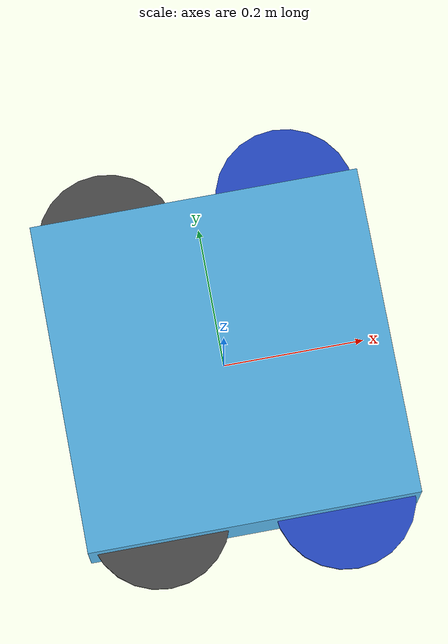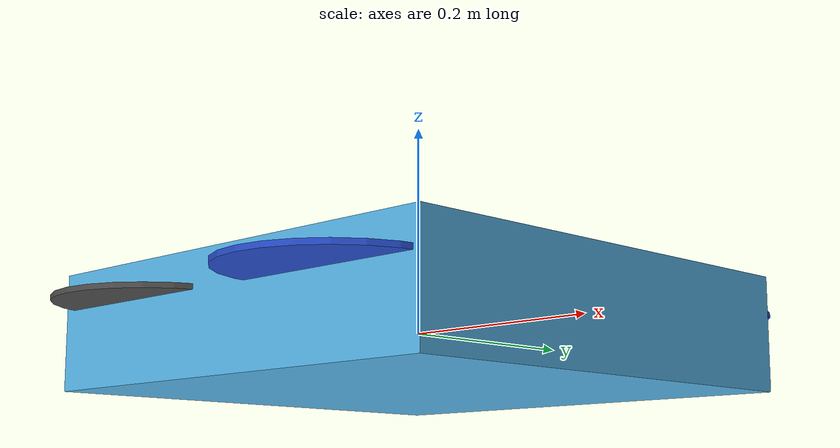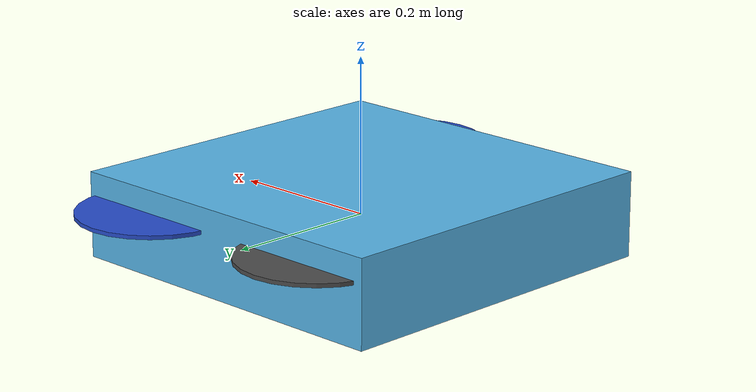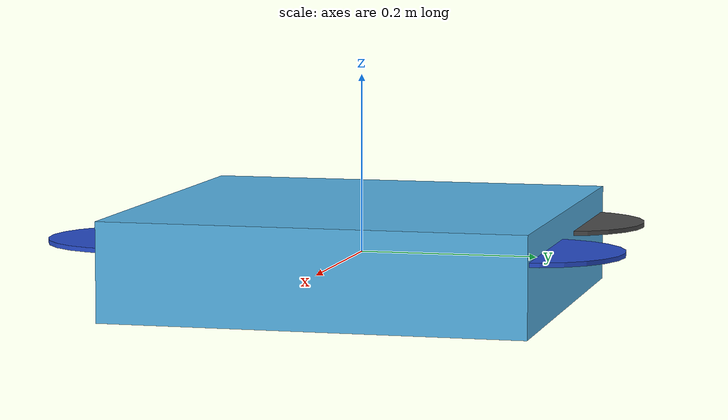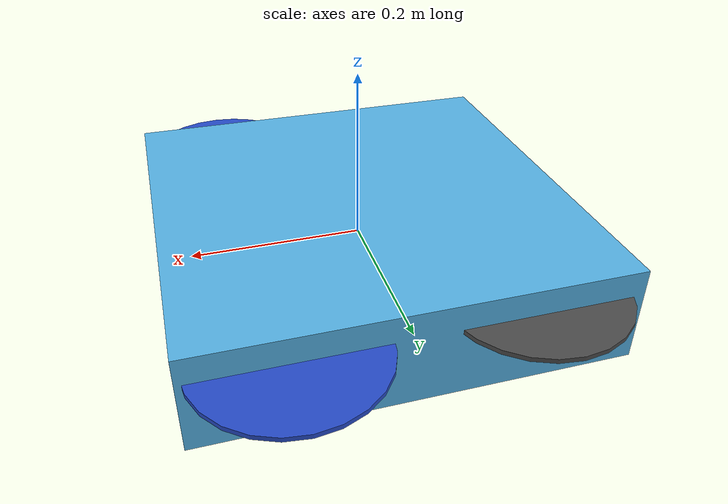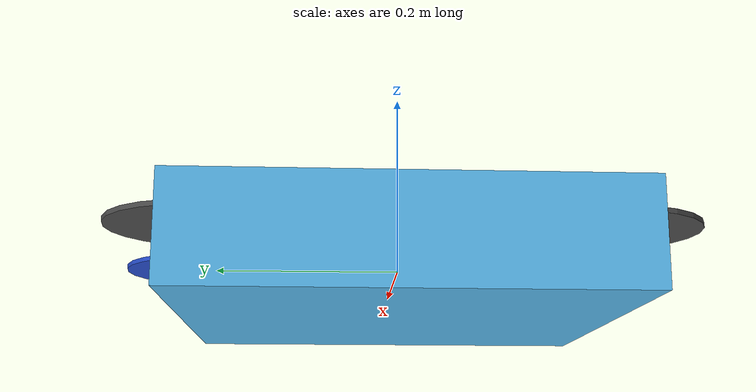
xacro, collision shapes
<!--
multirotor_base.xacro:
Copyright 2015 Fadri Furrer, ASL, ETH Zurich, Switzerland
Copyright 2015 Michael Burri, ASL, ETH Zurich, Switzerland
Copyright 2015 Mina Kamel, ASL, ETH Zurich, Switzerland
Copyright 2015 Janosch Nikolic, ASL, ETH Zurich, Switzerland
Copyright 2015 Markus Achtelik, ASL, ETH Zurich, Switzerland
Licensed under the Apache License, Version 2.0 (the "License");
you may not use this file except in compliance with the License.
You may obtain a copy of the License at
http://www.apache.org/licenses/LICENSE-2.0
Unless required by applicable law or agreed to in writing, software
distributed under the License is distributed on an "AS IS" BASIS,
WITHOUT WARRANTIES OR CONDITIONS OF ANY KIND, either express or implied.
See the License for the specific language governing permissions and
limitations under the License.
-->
<?xml version="1.0"?>

<robot name="iris" xmlns:xacro="http://ros.org/wiki/xacro">
  <!-- Properties -->
  <xacro:property name="namespace" value="iris" />
  <xacro:property name="rotor_velocity_slowdown_sim" value="10" />
  <xacro:property name="mesh_file" value="package://rotors_description/meshes/iris.dae" />
  <xacro:property name="use_mesh_file" value="true" />
  <xacro:property name="mesh_scale" value="1 1 1"/>
  <xacro:property name="mesh_scale_prop" value="1 1 1"/>
  <xacro:property name="mass" value="1.5" /> <!-- [kg] -->
  <xacro:property name="body_width" value="0.47" />
  <xacro:property name="body_height" value="0.11" />
  <xacro:property name="mass_rotor" value="0.005" /> <!-- [kg] -->
  <xacro:property name="arm_length_front_x" value="0.13" />
  <xacro:property name="arm_length_back_x" value="0.13" />
  <xacro:property name="arm_length_front_y" value="0.22" />
  <xacro:property name="arm_length_back_y" value="0.2" />
  <xacro:property name="rotor_offset_top" value="0.023" />
  <xacro:property name="radius_rotor" value="0.1" />
  <xacro:property name="motor_constant" value="8.54858e-06" /> <!-- [kg.m/s^2] -->
  <xacro:property name="moment_constant" value="0.16" />
  <xacro:property name="time_constant_up" value="0.0125" />
  <xacro:property name="time_constant_down" value="0.025" />
  <xacro:property name="max_rot_velocity" value="838" /> <!-- [rad/s] -->
  <xacro:property name="sin30" value="0.5" />
  <xacro:property name="cos30" value="0.866025403784" />
  <xacro:property name="sqrt2" value="1.4142135623730951" />
  <xacro:property name="rotor_drag_coefficient" value="8.06428e-05" />
  <xacro:property name="rolling_moment_coefficient" value="0.000001" />
  <xacro:property name="color" value="DarkGrey" />

  <!-- Property Blocks -->
  <xacro:property name="body_inertia">
    <inertia ixx="0.0347563" ixy="0.0" ixz="0.0" iyy="0.0458929" iyz="0.0" izz="0.0977" /> <!-- [kg.m^2] [kg.m^2] [kg.m^2] [kg.m^2] [kg.m^2] [kg.m^2] -->
  </xacro:property>

  <!-- inertia of a single rotor, assuming it is a cuboid. Height=3mm, width=15mm -->
  <xacro:property name="rotor_inertia">
    <inertia
    ixx="${1/12 * mass_rotor * (0.015 * 0.015 + 0.003 * 0.003) * rotor_velocity_slowdown_sim}"
    iyy="${1/12 * mass_rotor * (4 * radius_rotor * radius_rotor + 0.003 * 0.003) * rotor_velocity_slowdown_sim}"
    izz="${1/12 * mass_rotor * (4 * radius_rotor * radius_rotor + 0.015 * 0.015) * rotor_velocity_slowdown_sim}"
    ixy="0.0" ixz="0.0"  iyz="0.0" /> <!-- [kg.m^2] [kg.m^2] [kg.m^2] [kg.m^2] [kg.m^2] [kg.m^2] -->
  </xacro:property>

  <!-- Included URDF Files -->
  <xacro:include filename="$(find rotors_description)/urdf/multirotor_base.xacro" />

  <!-- Instantiate multirotor_base_macro once -->
  <xacro:multirotor_base_macro
    robot_namespace="${namespace}"
    mass="${mass}"
    body_width="${body_width}"
    body_height="${body_height}"
    use_mesh_file="${use_mesh_file}"
    mesh_file="${mesh_file}"
    color="${color}"
    >
    <xacro:insert_block name="body_inertia" />
  </xacro:multirotor_base_macro>

  <!-- Instantiate rotors -->
  <xacro:vertical_rotor
    robot_namespace="${namespace}"
    suffix="front_right"
    direction="ccw"
    motor_constant="${motor_constant}"
    moment_constant="${moment_constant}"
    parent="${namespace}/base_link"
    mass_rotor="${mass_rotor}"
    radius_rotor="${radius_rotor}"
    time_constant_up="${time_constant_up}"
    time_constant_down="${time_constant_down}"
    max_rot_velocity="${max_rot_velocity}"
    motor_number="0"
    rotor_drag_coefficient="${rotor_drag_coefficient}"
    rolling_moment_coefficient="${rolling_moment_coefficient}"
    mesh="package://rotors_description/meshes/iris_prop_ccw.dae"
    use_own_mesh="true"
    color="Blue">
    <origin xyz="${arm_length_front_x} -${arm_length_front_y} ${rotor_offset_top}" rpy="0 0 0" />
    <xacro:insert_block name="rotor_inertia" />
  </xacro:vertical_rotor>

  <xacro:vertical_rotor
    robot_namespace="${namespace}"
    suffix="back_left"
    direction="ccw"
    motor_constant="${motor_constant}"
    moment_constant="${moment_constant}"
    parent="${namespace}/base_link"
    mass_rotor="${mass_rotor}"
    radius_rotor="${radius_rotor}"
    time_constant_up="${time_constant_up}"
    time_constant_down="${time_constant_down}"
    max_rot_velocity="${max_rot_velocity}"
    motor_number="1"
    rotor_drag_coefficient="${rotor_drag_coefficient}"
    rolling_moment_coefficient="${rolling_moment_coefficient}"
    mesh="package://rotors_description/meshes/iris_prop_ccw.dae"
    use_own_mesh="true"
    color="DarkGrey">
    <origin xyz="-${arm_length_back_x} ${arm_length_back_y} ${rotor_offset_top}" rpy="0 0 0" />
    <xacro:insert_block name="rotor_inertia" />
  </xacro:vertical_rotor>

  <xacro:vertical_rotor robot_namespace="${namespace}"
    suffix="front_left"
    direction="cw"
    motor_constant="${motor_constant}"
    moment_constant="${moment_constant}"
    parent="${namespace}/base_link"
    mass_rotor="${mass_rotor}"
    radius_rotor="${radius_rotor}"
    time_constant_up="${time_constant_up}"
    time_constant_down="${time_constant_down}"
    max_rot_velocity="${max_rot_velocity}"
    motor_number="2"
    rotor_drag_coefficient="${rotor_drag_coefficient}"
    rolling_moment_coefficient="${rolling_moment_coefficient}"
    mesh="package://rotors_description/meshes/iris_prop_cw.dae"
    use_own_mesh="true"
    color="Blue">
    <origin xyz="${arm_length_front_x} ${arm_length_front_y} ${rotor_offset_top}" rpy="0 0 0" />
    <xacro:insert_block name="rotor_inertia" />
  </xacro:vertical_rotor>

  <xacro:vertical_rotor robot_namespace="${namespace}"
    suffix="back_right"
    direction="cw"
    motor_constant="${motor_constant}"
    moment_constant="${moment_constant}"
    parent="${namespace}/base_link"
    mass_rotor="${mass_rotor}"
    radius_rotor="${radius_rotor}"
    time_constant_up="${time_constant_up}"
    time_constant_down="${time_constant_down}"
    max_rot_velocity="${max_rot_velocity}"
    motor_number="3"
    rotor_drag_coefficient="${rotor_drag_coefficient}"
    rolling_moment_coefficient="${rolling_moment_coefficient}"
    mesh="package://rotors_description/meshes/iris_prop_cw.dae"
    use_own_mesh="true"
    color="DarkGrey">
    <origin xyz="-${arm_length_back_x} -${arm_length_back_y} ${rotor_offset_top}" rpy="0 0 0" />
    <xacro:insert_block name="rotor_inertia" />
  </xacro:vertical_rotor>

</robot>

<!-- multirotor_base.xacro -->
<robot xmlns:xacro="http://ros.org/wiki/xacro">
  <!-- Macro for the inertia of a box -->
  <xacro:macro name="box_inertia" params="x y z mass">
    <inertia ixx="${0.0833333 * mass * (y*y + z*z)}" ixy="0.0" ixz="0.0"
      iyy="${0.0833333 * mass * (x*x + z*z)}" iyz="0.0"
      izz="${0.0833333 * mass * (x*x + y*y)}" />
  </xacro:macro>

  <!-- Macro for the inertial properties of a box -->
  <xacro:macro name="box_inertial" params="x y z mass *origin">
    <inertial>
      <mass value="${mass}" />
      <xacro:insert_block name="origin" />
      <xacro:box_inertia x="${x}" y="${y}" z="${z}" mass="${mass}" />
    </inertial>
  </xacro:macro>

  <!-- Main multirotor link -->
  <xacro:macro name="multirotor_base_macro"
    params="robot_namespace mass body_width body_height use_mesh_file mesh_file color *inertia">
    <link name="${robot_namespace}/base_link"></link>

    <joint name="${robot_namespace}/base_joint" type="fixed">
      <origin xyz="0 0 0" rpy="0 0 0" />
      <parent link="${robot_namespace}/base_link" />
      <child link="${robot_namespace}/base_link_inertia" />
    </joint>

    <link name="${robot_namespace}/base_link_inertia">
      <inertial>
        <mass value="${mass}" />  <!-- [kg] -->
        <origin xyz="0 0 0" />
        <xacro:insert_block name="inertia" />
      </inertial>

      <visual>
        <origin xyz="0 0 0" rpy="0 0 0" />
        <geometry>
          <xacro:if value="${use_mesh_file}">
            <mesh filename="${mesh_file}" scale="1 1 1" />
          </xacro:if>
          <xacro:unless value="${use_mesh_file}">
            <box size="${body_width} ${body_width} ${body_height}"/>
          </xacro:unless>
        </geometry>
      </visual>

      <collision>
        <origin xyz="0 0 0" rpy="0 0 0" />
        <geometry>
          <box size="${body_width} ${body_width} ${body_height}" />
        </geometry>
      </collision>
    </link>

    <!-- attach multirotor_base_plugin to the base_link -->
    <gazebo>
      <plugin filename="librotors_gazebo_multirotor_base_plugin.so" name="multirotor_base_plugin">
        <robotNamespace>${robot_namespace}</robotNamespace>
        <linkName>${robot_namespace}/base_link</linkName>
        <rotorVelocitySlowdownSim>${rotor_velocity_slowdown_sim}</rotorVelocitySlowdownSim>
      </plugin>
    </gazebo>
    <gazebo reference="${robot_namespace}/base_link">
      <material>Gazebo/${color}</material>
    </gazebo>
  </xacro:macro>

  <!-- Rotor joint and link -->
  <xacro:macro name="vertical_rotor"
    params="robot_namespace suffix direction motor_constant moment_constant parent mass_rotor radius_rotor time_constant_up time_constant_down max_rot_velocity motor_number rotor_drag_coefficient rolling_moment_coefficient color use_own_mesh mesh *origin *inertia">
    <joint name="${robot_namespace}/rotor_${motor_number}_joint" type="continuous">
      <xacro:insert_block name="origin" />
      <axis xyz="0 0 1" />
      <parent link="${parent}" />
      <child link="${robot_namespace}/rotor_${motor_number}" />
    </joint>
    <link name="${robot_namespace}/rotor_${motor_number}">
      <inertial>
        <mass value="${mass_rotor}" /> <!-- [kg] -->
        <xacro:insert_block name="inertia" />
      </inertial>
      <visual>
        <geometry>

          <xacro:if value="${use_own_mesh}">
            <mesh filename="${mesh}"
              scale="1 1 1" />
          </xacro:if>
          <xacro:unless value="${use_own_mesh}">
            <mesh filename="package://rotors_description/meshes/propeller_${direction}.dae"
              scale="${radius_rotor} ${radius_rotor} ${radius_rotor}" /> <!-- The propeller meshes have a radius of 1m -->
          </xacro:unless>
        </geometry>
      </visual>
      <collision>
        <geometry>
          <cylinder length="0.005" radius="${radius_rotor}" />
        </geometry>
      </collision>
    </link>
    <gazebo>
      <plugin name="${robot_namespace}_${suffix}_motor_model" filename="librotors_gazebo_motor_model.so">
        <robotNamespace>${robot_namespace}</robotNamespace>
        <jointName>${robot_namespace}/rotor_${motor_number}_joint</jointName>
        <linkName>${robot_namespace}/rotor_${motor_number}</linkName>
        <turningDirection>${direction}</turningDirection>
        <timeConstantUp>${time_constant_up}</timeConstantUp>
        <timeConstantDown>${time_constant_down}</timeConstantDown>
        <maxRotVelocity>${max_rot_velocity}</maxRotVelocity>
        <motorConstant>${motor_constant}</motorConstant>
        <momentConstant>${moment_constant}</momentConstant>
        <commandSubTopic>gazebo/command/motor_speed</commandSubTopic>
        <motorNumber>${motor_number}</motorNumber>
        <rotorDragCoefficient>${rotor_drag_coefficient}</rotorDragCoefficient>
        <rollingMomentCoefficient>${rolling_moment_coefficient}</rollingMomentCoefficient>
        <motorSpeedPubTopic>motor_speed/${motor_number}</motorSpeedPubTopic>
        <rotorVelocitySlowdownSim>${rotor_velocity_slowdown_sim}</rotorVelocitySlowdownSim>
      </plugin>
    </gazebo>
    <gazebo reference="${robot_namespace}/rotor_${motor_number}">
      <material>Gazebo/${color}</material>
    </gazebo>
  </xacro:macro>
</robot>
